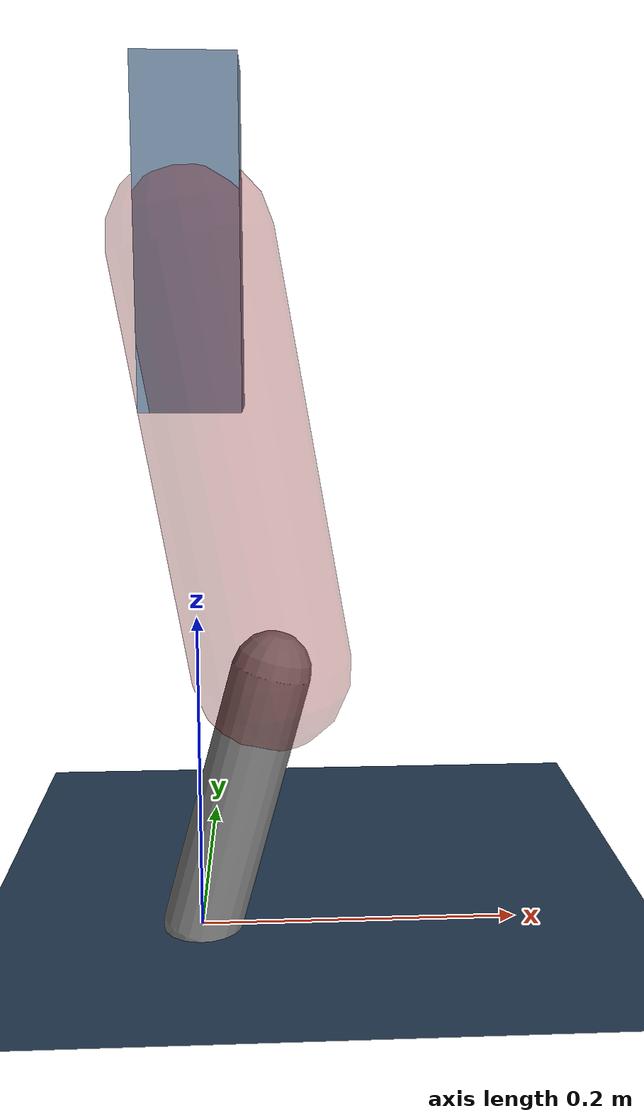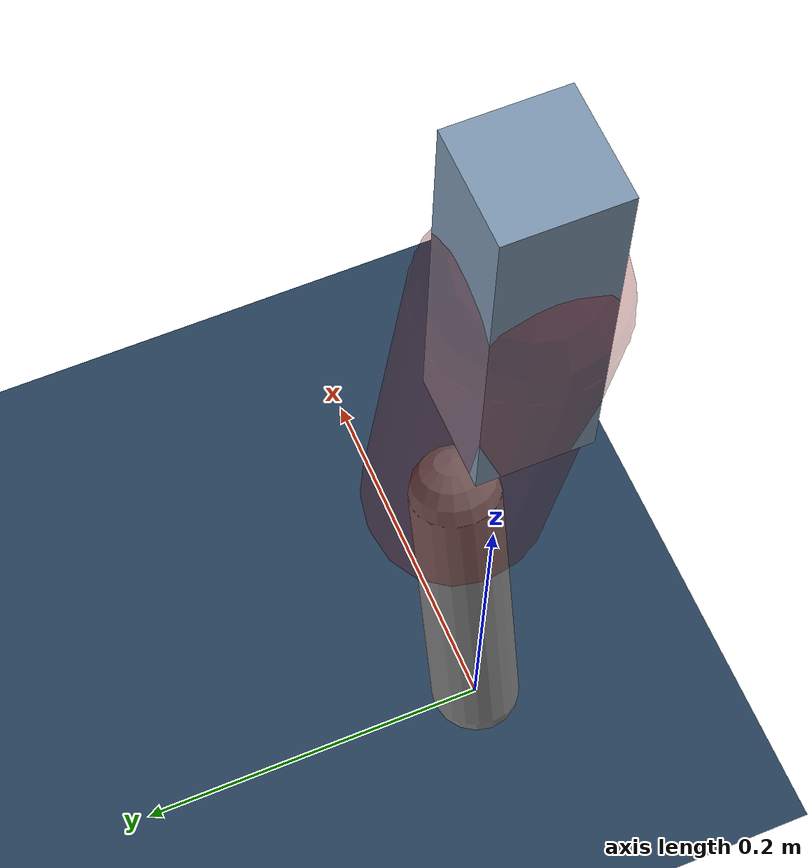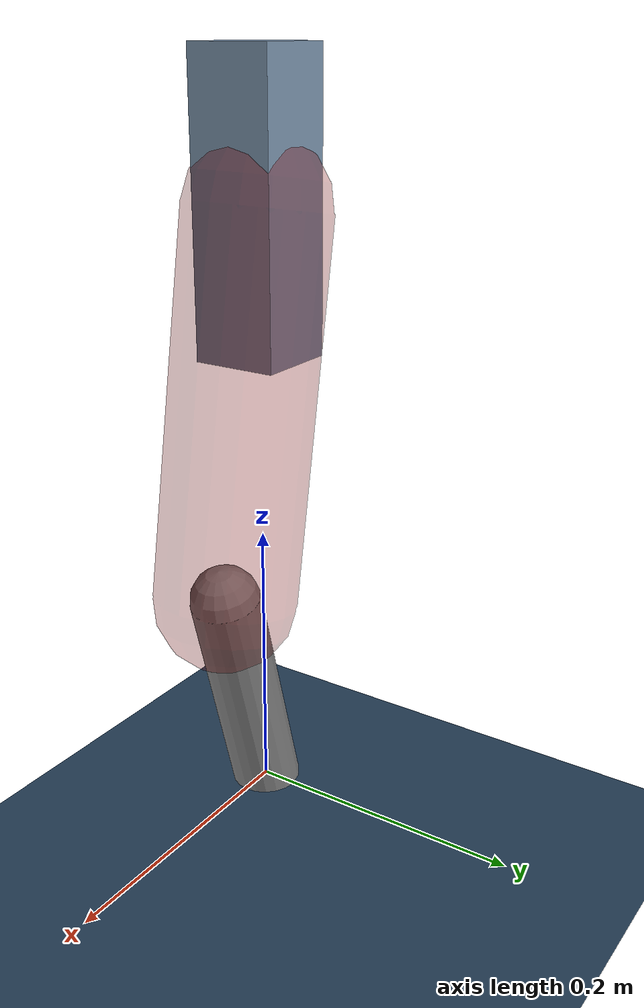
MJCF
<mujoco model="Hopper2D">
	<compiler inertiafromgeom="true" angle="radian" />
	<option timestep="0.001" integrator="implicit" cone="elliptic" solver="Newton" tolerance="1e-10" />

	<default>
		<geom contype="1" conaffinity="1" condim="3" friction="2 0.005 0.0001" solref="0.005 1" />
		<joint limited="true" damping="0.1" />
	</default>

	<asset>
		<texture name="skybox" type="skybox" builtin="gradient" rgb1=".4 .6 .8" rgb2="0 0 0" width="800" height="800" />
		<texture name="grid" type="2d" builtin="checker" rgb1=".1 .2 .3" rgb2=".2 .3 .4" width="300" height="300" mark="edge" markrgb=".2 .3 .4" />
		<material name="ground" texture="grid" texrepeat="1 1" texuniform="true" reflectance="0.1" />
		<material name="leg" rgba="0.5 0.6 0.7 1" />
	</asset>

	<worldbody>

		<geom name="floor" type="plane" size="5 5 0.25" material="ground" />

		<light directional="false" diffuse="0.8 0.8 0.8" specular="0.3 0.3 0.3" pos="0 0 2" dir="0 0 -1" />
		<light mode="targetbodycom" target="base" directional="false" diffuse="0.8 0.8 0.8" specular="0.3 0.3 0.3" pos="0 0 2" dir="0 0 -1" />

		<camera name="fixed" pos="0 -2 1" xyaxes="1 0 0 0 0 1" />
		<camera name="tracking" mode="trackcom" pos="0 -3 1" />

		<body name="root" pos="0 0 0.4280939413395768">
			<joint name="slide_x" type="slide" axis="1 0 0" range="-100 100" />
			<joint name="slide_z" type="slide" axis="0 0 1" range="0 10" />

			<body name="base" pos="0 0 0">
				<geom name="torso" type="box" size="0.03 0.03 0.1" mass="2.901" material="leg" />

				<body name="link1" pos="0 0 0" euler="0 1.399091751708025 0">
					<joint type="hinge" axis="0 -1 0" pos="0 0 0" name="hinge1" limited="true" range="-3.14 3.14" stiffness="0" damping="0.1" />
					<geom name="thigh" type="capsule" fromto="0 0 0 0.2657810120672987 0 0" size="0.05" rgba="0.5 0 0 0.3" mass="0.8975306313749766" />

					<body name="link2" pos="0.2657810120672987 0 0" euler="0 0.4383980119788577 0">
						<joint type="hinge" axis="0 -1 0" pos="0 0 0" name="hinge2" limited="true" range="-3.14 3.14" stiffness="0" damping="0.1" />
						<geom name="shank" type="capsule" fromto="0 0 0 0.17231292927227806 0 0" size="0.025" mass="0.3772816363450503" />

					</body>
				</body>
			</body>
		</body>
	</worldbody>

	<actuator>
		<motor name="torque1" joint="hinge1" ctrlrange="-58.449069445244334 58.449069445244334" ctrllimited="true" gear="1" />
		<motor name="torque2" joint="hinge2" ctrlrange="-75.54060081311576 75.54060081311576" ctrllimited="true" gear="1" />
	</actuator>
</mujoco>
